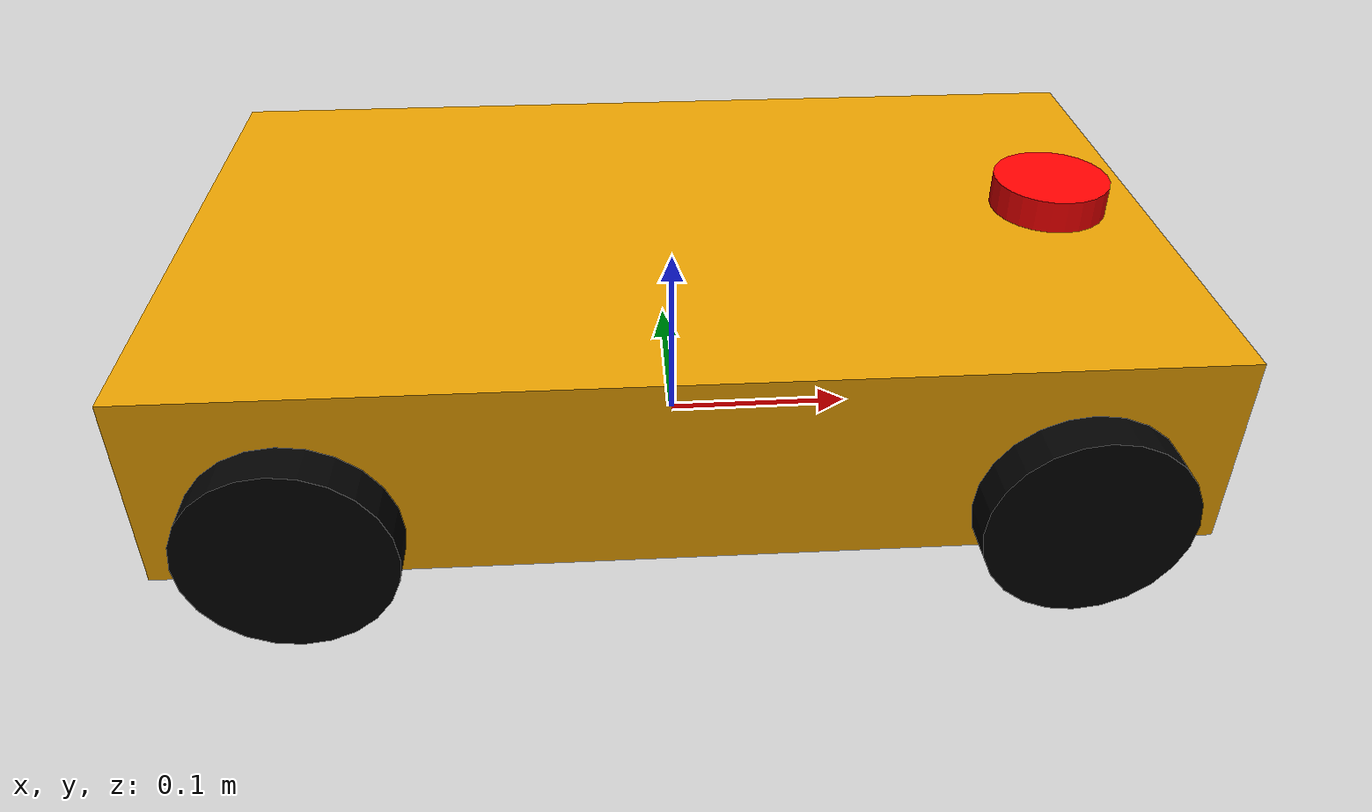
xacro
<?xml version="1.0"?>

<robot name="hachiroku_bot" xmlns:xacro="http://ros.org/wiki/xacro">

  <material name="red">
    <color rgba="1 0 0 1"/>
  </material>
  <material name="black">
    <color rgba="0 0 0 1"/>
  </material>

    <xacro:property name="wheel_radius" value="0.05"/>
    <xacro:property name="wheel_length" value="0.02"/>
    <xacro:property name="base_length"  value="0.5"/>
    <xacro:property name="base_width"   value="0.3"/>
    <xacro:property name="base_height"  value="0.1"/>
    <xacro:property name="lidar_height" value="0.028"/>
    <xacro:property name="lidar_radius" value="0.03"/>

  <xacro:macro name="wheel" params="name x y z">
    <link name="${name}">
      <visual>
        <geometry>
          <cylinder radius="${wheel_radius}" length="${wheel_length}"/>
        </geometry>
        <origin xyz="0 0 0" rpy="1.5708 0 0"/>
        <material name="black"/>
      </visual>

      <collision>
        <geometry>
          <cylinder radius="${wheel_radius}" length="${wheel_length}"/>
        </geometry>
        <origin xyz="0 0 0" rpy="1.5708 0 0"/>
      </collision>

        <inertial>
            <mass value="0.1"/>
            <inertia ixx="0.001" iyy="0.001" izz="0.001" ixy="0" ixz="0" iyz="0"/>
        </inertial>
    </link>

    <joint name="${name}_joint" type="continuous">
      <parent link="base_link"/>
      <child link="${name}"/>
      <origin xyz="${x} ${y} ${z}" rpy="0 0 0"/>
      <axis xyz="0 1 0"/>
    </joint>
  </xacro:macro>

  <link name="base_link">
      <visual>
          <geometry>
              <box size="${base_length} ${base_width} ${base_height}"/>
          </geometry>
          <origin xyz="0 0 0.075"/>
      </visual>

        <collision>
            <geometry>
                <box size="${base_length} ${base_width} ${base_height}"/>
            </geometry>
            <origin xyz="0 0 0.075"/>
        </collision>

        <inertial>
            <mass value="1.0"/>
            <inertia ixx="0.1" iyy="0.1" izz="0.1" ixy="0" ixz="0" iyz="0"/>
        </inertial>
  </link>

  <link name="lidar_link">
      <visual>
          <geometry>
              <cylinder radius="${lidar_radius}" length="${lidar_height}"/>
          </geometry>
          <origin xyz="0 0 0"/>
          <material name="red"/>
      </visual>

        <collision>
            <geometry>
                <cylinder radius="${lidar_radius}" length="${lidar_height}"/>
            </geometry>
            <origin xyz="0 0 0"/>
        </collision>

        <inertial>
            <mass value="0.05"/>
            <inertia ixx="0.001" iyy="0.001" izz="0.001" ixy="0" ixz="0" iyz="0"/>
        </inertial>
  </link>

  <joint name="lidar_joint" type="fixed">
      <parent link="base_link"/>
      <child link="lidar_link"/>
      <origin xyz="0.2 0 0.128" rpy="0 0 0"/>
  </joint>

  <xacro:wheel name="front_left_wheel" x="0.18" y="0.16" z="0.05"/>
  <xacro:wheel name="front_right_wheel" x="0.18" y="-0.16" z="0.05"/>
  <xacro:wheel name="rear_left_wheel" x="-0.18" y="0.16" z="0.05"/>
  <xacro:wheel name="rear_right_wheel" x="-0.18" y="-0.16" z="0.05"/>
</robot>
